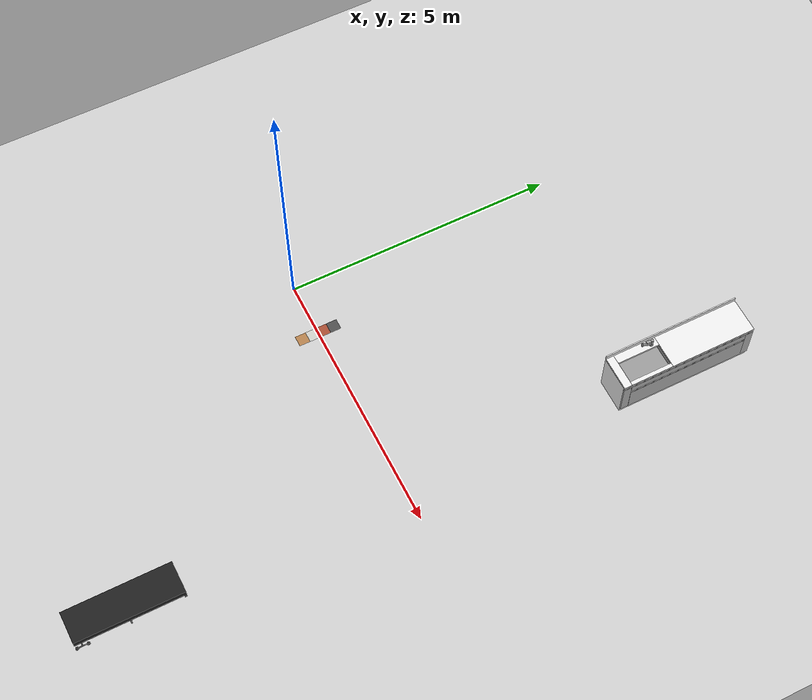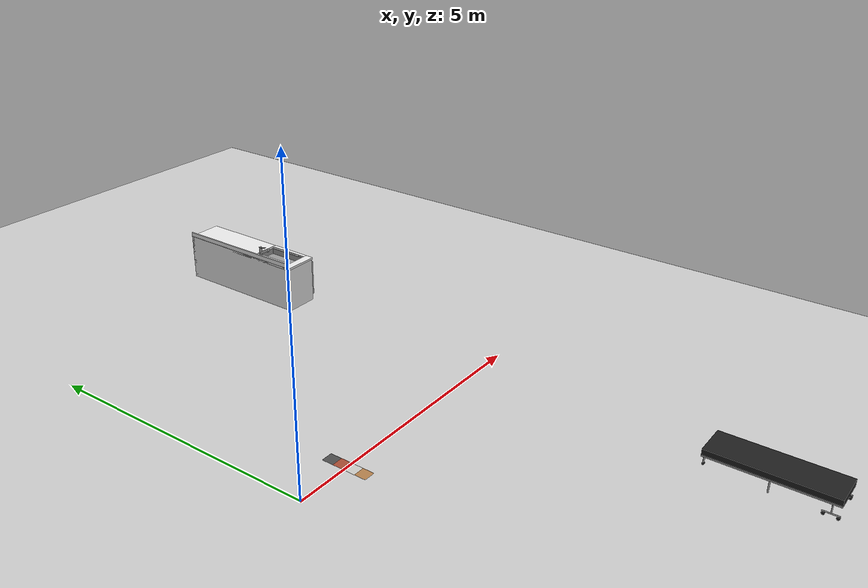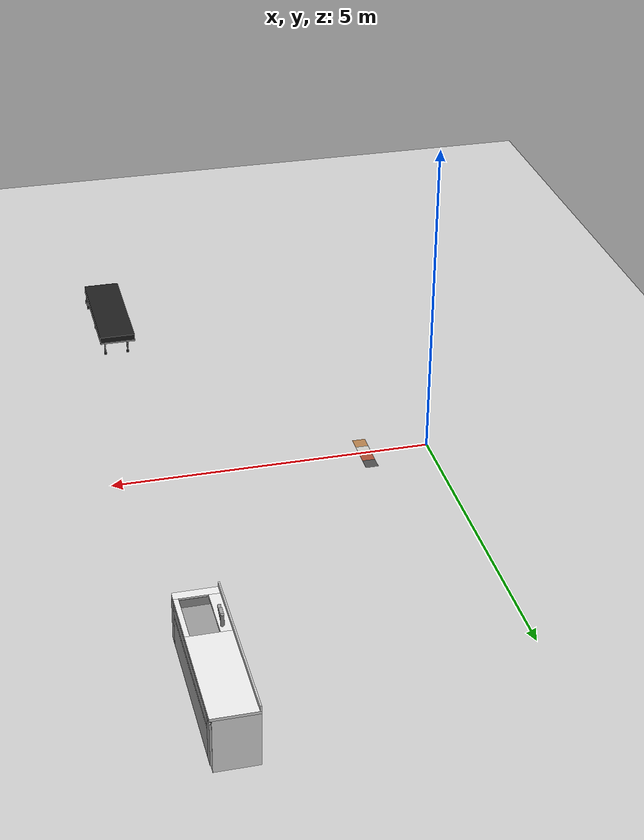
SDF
<sdf version="1.6">
 <world name="megaweb">
  <model name="ground_plane">
   <static>1</static>
   <link name="link">
    <collision name="collision">
     <geometry><plane><normal>0 0 1</normal><size>100 100</size></plane></geometry>
     <surface><friction><ode><mu>100</mu><mu2>50</mu2></ode></friction></surface>
    </collision>
    <visual name="visual">
     <cast_shadows>0</cast_shadows>
     <geometry><plane><normal>0 0 1</normal><size>100 100</size></plane></geometry>
     <material>
      <script><uri>file://media/materials/scripts/gazebo.material</uri><name>Gazebo/Grey</name></script>
     </material>
    </visual>
   </link>
  </model>
  <model name="class0tag">
   <link name="link">
    <inertial>
     <mass>1</mass>
     <inertia>
      <ixx>0.166667</ixx>
      <ixy>0</ixy>
      <ixz>0</ixz>
      <iyy>0.166667</iyy>
      <iyz>0</iyz>
      <izz>0.166667</izz>
     </inertia>
    </inertial>
    <visual name="visual">
     <geometry><box><size>0.2 0.2 0.0001</size></box></geometry>
     <material>
      <script><name>Gazebo/Wood</name><uri>file://media/materials/scripts/gazebo.material</uri></script>
      <ambient>0.3 0.3 0.3 1</ambient>
      <diffuse>0.7 0.7 0.7 1</diffuse>
      <specular>0.01 0.01 0.01 1</specular>
      <emissive>0 0 0 1</emissive>
      <shader type="vertex"><normal_map>__default__</normal_map></shader>
      <lighting>0</lighting>
     </material>
    </visual>
   </link>
   <static>0</static>
   <pose>1 -0.3 0 0 -0 0</pose>
  </model>
  <model name="class1tag">
   <link name="link">
    <inertial>
     <mass>1</mass>
     <inertia>
      <ixx>0.166667</ixx>
      <ixy>0</ixy>
      <ixz>0</ixz>
      <iyy>0.166667</iyy>
      <iyz>0</iyz>
      <izz>0.166667</izz>
     </inertia>
    </inertial>
    <visual name="visual">
     <geometry><box><size>0.2 0.2 0.0001</size></box></geometry>
     <material>
      <script><name>Gazebo/CeilingTiled</name><uri>file://media/materials/scripts/gazebo.material</uri></script>
      <ambient>0.3 0.3 0.3 1</ambient>
      <diffuse>0.7 0.7 0.7 1</diffuse>
      <specular>0.01 0.01 0.01 1</specular>
      <emissive>0 0 0 1</emissive>
      <shader type="vertex"><normal_map>__default__</normal_map></shader>
      <lighting>0</lighting>
     </material>
    </visual>
   </link>
   <static>0</static>
   <pose>1 -0.1 0 0 -0 0</pose>
  </model>
  <model name="class2tag">
   <link name="link">
    <inertial>
     <mass>1</mass>
     <inertia>
      <ixx>0.166667</ixx>
      <ixy>0</ixy>
      <ixz>0</ixz>
      <iyy>0.166667</iyy>
      <iyz>0</iyz>
      <izz>0.166667</izz>
     </inertia>
    </inertial>
    <visual name="visual">
     <geometry><box><size>0.2 0.2 0.0001</size></box></geometry>
     <material>
      <script><name>Gazebo/Bricks</name><uri>file://media/materials/scripts/gazebo.material</uri></script>
      <ambient>0.3 0.3 0.3 1</ambient>
      <diffuse>0.7 0.7 0.7 1</diffuse>
      <specular>0.01 0.01 0.01 1</specular>
      <emissive>0 0 0 1</emissive>
      <shader type="vertex"><normal_map>__default__</normal_map></shader>
      <lighting>0</lighting>
     </material>
    </visual>
   </link>
   <static>0</static>
   <pose>1 0.1 0 0 -0 0</pose>
  </model>
  <model name="class3tag">
   <link name="link">
    <inertial>
     <mass>1</mass>
     <inertia>
      <ixx>0.166667</ixx>
      <ixy>0</ixy>
      <ixz>0</ixz>
      <iyy>0.166667</iyy>
      <iyz>0</iyz>
      <izz>0.166667</izz>
     </inertia>
    </inertial>
    <visual name="visual">
     <geometry><box><size>0.2 0.2 0.0001</size></box></geometry>
     <material>
      <script><name>Gazebo/Road</name><uri>file://media/materials/scripts/gazebo.material</uri></script>
      <ambient>0.3 0.3 0.3 1</ambient>
      <diffuse>0.7 0.7 0.7 1</diffuse>
      <specular>0.01 0.01 0.01 1</specular>
      <emissive>0 0 0 1</emissive>
      <shader type="vertex"><normal_map>__default__</normal_map></shader>
      <lighting>0</lighting>
     </material>
    </visual>
   </link>
   <static>0</static>
   <pose>1 0.3 0 0 -0 0</pose>
  </model>
  <model name="bed">
   <link name="link">
    <inertial>
     <mass>10</mass>
     <inertia><ixx>1</ixx><ixy>0</ixy><ixz>0</ixz><iyy>1</iyy><iyz>0</iyz><izz>1</izz></inertia>
    </inertial>
    <visual name="cushion">
     <pose>-0.295 -0.975 0.2875 0 -0 0</pose>
     <geometry><box><size>0.59 1.95 0.095</size></box></geometry>
     <material>
      <script>
       <uri>model://base_materials/cloth/scripts</uri>
       <uri>model://base_materials/cloth/textures</uri>
       <name>cloth/black</name>
      </script>
     </material>
    </visual>
    <collision name="collision_cushion">
     <pose>-0.295 -0.975 0.2875 0 -0 0</pose>
     <geometry><box><size>0.59 1.95 0.095</size></box></geometry>
    </collision>
    <visual name="top_frame">
     <pose>-0.295 -0.975 0.225 0 -0 0</pose>
     <geometry><box><size>0.59 1.95 0.03</size></box></geometry>
     <material>
      <script><uri>model://base_materials/color/scripts</uri><name>hsr_color/grey</name></script>
     </material>
    </visual>
    <collision name="collision_top_frame">
     <pose>-0.295 -0.975 0.225 0 -0 0</pose>
     <geometry><box><size>0.59 1.95 0.03</size></box></geometry>
    </collision>
    <visual name="right_front_pole">
     <pose>-0.075 -0.0125 0.125 0 -0 0</pose>
     <geometry><cylinder><radius>0.0125</radius><length>0.17</length></cylinder></geometry>
     <material>
      <script><uri>model://base_materials/color/scripts</uri><name>hsr_color/grey</name></script>
     </material>
    </visual>
    <collision name="collision_right_front_pole">
     <pose>-0.075 -0.0125 0.125 0 -0 0</pose>
     <geometry><cylinder><radius>0.0125</radius><length>0.17</length></cylinder></geometry>
    </collision>
    <visual name="right_front_caster">
     <pose>-0.075 -0.0125 0.02 0 1.57 0</pose>
     <geometry><cylinder><radius>0.02</radius><length>0.04</length></cylinder></geometry>
     <material><script><name>Gazebo/Black</name><uri>__default__</uri></script></material>
    </visual>
    <collision name="collision_right_front_caster">
     <pose>-0.075 -0.0125 0.02 0 1.57 0</pose>
     <geometry><cylinder><radius>0.02</radius><length>0.04</length></cylinder></geometry>
    </collision>
    <visual name="right_back_pole">
     <pose>-0.46 -0.0125 0.125 0 -0 0</pose>
     <geometry><cylinder><radius>0.0125</radius><length>0.17</length></cylinder></geometry>
     <material>
      <script><uri>model://base_materials/color/scripts</uri><name>hsr_color/grey</name></script>
     </material>
    </visual>
    <collision name="collision_right_back_pole">
     <pose>-0.46 -0.0125 0.125 0 -0 0</pose>
     <geometry><cylinder><radius>0.0125</radius><length>0.17</length></cylinder></geometry>
    </collision>
    <visual name="right_back_caster">
     <pose>-0.46 -0.0125 0.02 0 1.57 0</pose>
     <geometry><cylinder><radius>0.02</radius><length>0.04</length></cylinder></geometry>
     <material><script><name>Gazebo/Black</name><uri>__default__</uri></script></material>
    </visual>
    <collision name="collision_back_front_caster">
     <pose>-0.46 -0.0125 0.02 0 1.57 0</pose>
     <geometry><cylinder><radius>0.02</radius><length>0.04</length></cylinder></geometry>
    </collision>
    <visual name="center_front_pole">
     <pose>-0.0425 -0.975 0.105 0 -0 0</pose>
     <geometry><cylinder><radius>0.0125</radius><length>0.21</length></cylinder></geometry>
     <material>
      <script><uri>model://base_materials/color/scripts</uri><name>hsr_color/grey</name></script>
     </material>
    </visual>
    <collision name="collision_center_front_pole">
     <pose>-0.0425 -0.975 0.105 0 -0 0</pose>
     <geometry><cylinder><radius>0.0125</radius><length>0.17</length></cylinder></geometry>
    </collision>
    <visual name="center_back_pole">
     <pose>-0.5475 -0.975 0.105 0 -0 0</pose>
     <geometry><cylinder><radius>0.0125</radius><length>0.21</length></cylinder></geometry>
     <material>
      <script><uri>model://base_materials/color/scripts</uri><name>hsr_color/grey</name></script>
     </material>
    </visual>
    <collision name="collision_center_back_pole">
     <pose>-0.5475 -0.975 0.105 0 -0 0</pose>
     <geometry><cylinder><radius>0.0125</radius><length>0.17</length></cylinder></geometry>
    </collision>
    <visual name="left_front_horizon_pole">
     <pose>-0.01 -1.825 0.06 1.57 -0 0</pose>
     <geometry><cylinder><radius>0.01</radius><length>0.25</length></cylinder></geometry>
     <material>
      <script><uri>model://base_materials/color/scripts</uri><name>hsr_color/grey</name></script>
     </material>
    </visual>
    <collision name="collision_left_front_horizon_pole">
     <pose>-0.01 -1.825 0.06 1.57 -0 0</pose>
     <geometry><cylinder><radius>0.01</radius><length>0.25</length></cylinder></geometry>
    </collision>
    <visual name="left_front_vertical_pole">
     <pose>-0.01 -1.825 0.14 0 -0 0</pose>
     <geometry><cylinder><radius>0.01</radius><length>0.14</length></cylinder></geometry>
     <material>
      <script><uri>model://base_materials/color/scripts</uri><name>hsr_color/grey</name></script>
     </material>
    </visual>
    <collision name="collision_left_front_vertical_pole">
     <pose>-0.01 -1.825 0.14 0 -0 0</pose>
     <geometry><cylinder><radius>0.01</radius><length>0.14</length></cylinder></geometry>
    </collision>
    <visual name="left_front_caster_r">
     <pose>-0.02 -1.725 0.025 0 1.57 0</pose>
     <geometry><cylinder><radius>0.025</radius><length>0.04</length></cylinder></geometry>
     <material><script><name>Gazebo/Black</name><uri>__default__</uri></script></material>
    </visual>
    <collision name="collision_left_front_caster_r">
     <pose>-0.02 -1.725 0.025 0 1.57 0</pose>
     <geometry><cylinder><radius>0.025</radius><length>0.04</length></cylinder></geometry>
    </collision>
    <visual name="left_front_caster_l">
     <pose>-0.02 -1.925 0.025 0 1.57 0</pose>
     <geometry><cylinder><radius>0.025</radius><length>0.04</length></cylinder></geometry>
     <material><script><name>Gazebo/Black</name><uri>__default__</uri></script></material>
    </visual>
    <collision name="collision_left_front_caster_l">
     <pose>-0.02 -1.925 0.025 0 1.57 0</pose>
     <geometry><cylinder><radius>0.025</radius><length>0.04</length></cylinder></geometry>
    </collision>
    <visual name="left_back_horizon_pole">
     <pose>-0.58 -1.825 0.06 1.57 -0 0</pose>
     <geometry><cylinder><radius>0.01</radius><length>0.25</length></cylinder></geometry>
     <material>
      <script><uri>model://base_materials/color/scripts</uri><name>hsr_color/grey</name></script>
     </material>
    </visual>
    <collision name="collision_left_back_horizon_pole">
     <pose>-0.58 -1.825 0.06 1.57 -0 0</pose>
     <geometry><cylinder><radius>0.01</radius><length>0.25</length></cylinder></geometry>
    </collision>
    <visual name="left_back_vertical_pole">
     <pose>-0.58 -1.825 0.14 0 -0 0</pose>
     <geometry><cylinder><radius>0.01</radius><length>0.14</length></cylinder></geometry>
     <material>
      <script><uri>model://base_materials/color/scripts</uri><name>hsr_color/grey</name></script>
     </material>
    </visual>
    <collision name="collision_left_back_vertical_pole">
     <pose>-0.58 -1.825 0.14 0 -0 0</pose>
     <geometry><cylinder><radius>0.01</radius><length>0.14</length></cylinder></geometry>
    </collision>
    <visual name="left_back_caster_r">
     <pose>-0.57 -1.725 0.025 0 1.57 0</pose>
     <geometry><cylinder><radius>0.025</radius><length>0.04</length></cylinder></geometry>
     <material><script><name>Gazebo/Black</name><uri>__default__</uri></script></material>
    </visual>
    <collision name="collision_left_back_caster_r">
     <pose>-0.57 -1.725 0.025 0 1.57 0</pose>
     <geometry><cylinder><radius>0.025</radius><length>0.04</length></cylinder></geometry>
    </collision>
    <visual name="left_back_caster_l">
     <pose>-0.57 -1.925 0.025 0 1.57 0</pose>
     <geometry><cylinder><radius>0.025</radius><length>0.04</length></cylinder></geometry>
     <material><script><name>Gazebo/Black</name><uri>__default__</uri></script></material>
    </visual>
    <collision name="collision_left_back_caster_l">
     <pose>-0.57 -1.925 0.025 0 1.57 0</pose>
     <geometry><cylinder><radius>0.025</radius><length>0.04</length></cylinder></geometry>
    </collision>
    <velocity_decay><linear>0</linear><angular>0</angular></velocity_decay>
   </link>
   <static>1</static>
   <pose>4.56778 -4.01553 0 0 -0 0</pose>
  </model>
  <model name="sink-fix">
   <link name="link">
    <inertial>
     <mass>10</mass>
     <inertia><ixx>1</ixx><ixy>0</ixy><ixz>0</ixz><iyy>1</iyy><iyz>0</iyz><izz>1</izz></inertia>
    </inertial>
    <visual name="faucet1">
     <pose>-0.52 0.82 0.94 0 -0 0</pose>
     <geometry><cylinder><radius>0.027</radius><length>0.18</length></cylinder></geometry>
     <material>
      <script><uri>model://base_materials/color/scripts</uri><name>hsr_color/grey</name></script>
     </material>
    </visual>
    <collision name="collision_faucet1">
     <pose>-0.52 0.82 0.94 0 -0 0</pose>
     <geometry><cylinder><radius>0.027</radius><length>0.18</length></cylinder></geometry>
    </collision>
    <visual name="faucet2">
     <pose>-0.52 0.72 0.97 1.047 -0 0</pose>
     <geometry><cylinder><radius>0.024</radius><length>0.24</length></cylinder></geometry>
     <material>
      <script><uri>model://base_materials/color/scripts</uri><name>hsr_color/grey</name></script>
     </material>
    </visual>
    <collision name="collision_faucet2">
     <pose>-0.52 0.72 0.97 1.047 -0 0</pose>
     <geometry><cylinder><radius>0.024</radius><length>0.24</length></cylinder></geometry>
    </collision>
    <visual name="faucet3">
     <pose>-0.52 0.63 1 0 -0 0</pose>
     <geometry><cylinder><radius>0.015</radius><length>0.04</length></cylinder></geometry>
     <material>
      <script><uri>model://base_materials/color/scripts</uri><name>hsr_color/grey</name></script>
     </material>
    </visual>
    <collision name="collision_faucet3">
     <pose>-0.52 0.63 1 0 -0 0</pose>
     <geometry><cylinder><radius>0.015</radius><length>0.04</length></cylinder></geometry>
    </collision>
    <visual name="faucet_handle">
     <pose>-0.52 0.75 1.03 1.309 -0 0</pose>
     <geometry><box><size>0.048 0.01 0.11</size></box></geometry>
     <material>
      <script><uri>model://base_materials/color/scripts</uri><name>hsr_color/grey</name></script>
     </material>
    </visual>
    <collision name="collision_faucet_handle">
     <pose>-0.52 0.75 1.03 1.309 -0 0</pose>
     <geometry><box><size>0.048 0.01 0.11</size></box></geometry>
    </collision>
    <visual name="back_bucket">
     <pose>-0.57 0.545 0.74 0 -0 0</pose>
     <geometry><box><size>0.02 0.8 0.18</size></box></geometry>
     <material>
      <script><uri>model://base_materials/color/scripts</uri><name>hsr_color/grey</name></script>
     </material>
    </visual>
    <collision name="collision_back_bucket">
     <pose>-0.57 0.545 0.74 0 -0 0</pose>
     <geometry><box><size>0.02 0.8 0.18</size></box></geometry>
    </collision>
    <visual name="front_bucket">
     <pose>-0.06 0.545 0.74 0 -0 0</pose>
     <geometry><box><size>0.02 0.8 0.18</size></box></geometry>
     <material>
      <script><uri>model://base_materials/color/scripts</uri><name>hsr_color/grey</name></script>
     </material>
    </visual>
    <collision name="collision_fromt_bucket">
     <pose>-0.06 0.545 0.74 0 -0 0</pose>
     <geometry><box><size>0.02 0.8 0.18</size></box></geometry>
    </collision>
    <visual name="left_bucket">
     <pose>-0.32 0.14 0.74 0 -0 0</pose>
     <geometry><box><size>0.5 0.02 0.18</size></box></geometry>
     <material>
      <script><uri>model://base_materials/color/scripts</uri><name>hsr_color/grey</name></script>
     </material>
    </visual>
    <collision name="collision_left_bucket">
     <pose>-0.32 0.14 0.74 0 -0 0</pose>
     <geometry><box><size>0.5 0.02 0.18</size></box></geometry>
    </collision>
    <visual name="right_bucket">
     <pose>-0.32 0.96 0.74 0 -0 0</pose>
     <geometry><box><size>0.5 0.02 0.18</size></box></geometry>
     <material>
      <script><uri>model://base_materials/color/scripts</uri><name>hsr_color/grey</name></script>
     </material>
    </visual>
    <collision name="collision_right_bucket">
     <pose>-0.32 0.96 0.74 0 -0 0</pose>
     <geometry><box><size>0.5 0.02 0.18</size></box></geometry>
    </collision>
    <visual name="bottom_bucket">
     <pose>-0.33 0.555 0.695 0 -0 0</pose>
     <geometry><box><size>0.52 0.82 0.02</size></box></geometry>
     <material>
      <script><uri>model://base_materials/color/scripts</uri><name>hsr_color/grey</name></script>
     </material>
    </visual>
    <collision name="collision_bottom_bucket">
     <pose>-0.33 0.555 0.695 0 -0 0</pose>
     <geometry><box><size>0.52 0.82 0.02</size></box></geometry>
    </collision>
    <visual name="front_board">
     <pose>-0.04 1.275 0.425 0 -0 0</pose>
     <geometry><box><size>0.02 2.549 0.85</size></box></geometry>
     <material>
      <script><uri>model://base_materials/color/scripts</uri><name>hsr_color/white</name></script>
     </material>
    </visual>
    <collision name="collision_front_board">
     <pose>-0.04 1.275 0.425 0 -0 0</pose>
     <geometry><box><size>0.02 2.549 0.85</size></box></geometry>
    </collision>
    <visual name="back_board1">
     <pose>-0.625 1.275 0.425 0 -0 0</pose>
     <geometry><box><size>0.05 2.549 0.85</size></box></geometry>
     <material>
      <script><uri>model://base_materials/color/scripts</uri><name>hsr_color/white</name></script>
     </material>
    </visual>
    <collision name="collision_back_board1">
     <pose>-0.625 1.275 0.425 0 -0 0</pose>
     <geometry><box><size>0.05 2.549 0.85</size></box></geometry>
    </collision>
    <visual name="left_board">
     <pose>-0.34 0.025 0.425 0 -0 0</pose>
     <geometry><box><size>0.62 0.05 0.85</size></box></geometry>
     <material>
      <script><uri>model://base_materials/color/scripts</uri><name>hsr_color/white</name></script>
     </material>
    </visual>
    <collision name="collision_left_board">
     <pose>-0.34 0.025 0.425 0 -0 0</pose>
     <geometry><box><size>0.62 0.05 0.85</size></box></geometry>
    </collision>
    <visual name="right_board">
     <pose>-0.34 2.525 0.425 0 -0 0</pose>
     <geometry><box><size>0.62 0.05 0.85</size></box></geometry>
     <material>
      <script><uri>model://base_materials/color/scripts</uri><name>hsr_color/white</name></script>
     </material>
    </visual>
    <collision name="collision_right_board">
     <pose>-0.34 2.525 0.425 0 -0 0</pose>
     <geometry><box><size>0.62 0.05 0.85</size></box></geometry>
    </collision>
    <visual name="top_left_board">
     <pose>-0.325 0.0725 0.835 0 -0 0</pose>
     <geometry><box><size>0.65 0.146 0.04</size></box></geometry>
     <material>
      <script><uri>model://base_materials/color/scripts</uri><name>hsr_color/white</name></script>
     </material>
    </visual>
    <collision name="collision_top_left_board">
     <pose>-0.325 0.0725 0.835 0 -0 0</pose>
     <geometry><box><size>0.65 0.146 0.04</size></box></geometry>
    </collision>
    <visual name="top_right_board">
     <pose>-0.325 1.7475 0.835 0 -0 0</pose>
     <geometry><box><size>0.65 1.606 0.04</size></box></geometry>
     <material>
      <script><uri>model://base_materials/color/scripts</uri><name>hsr_color/white</name></script>
     </material>
    </visual>
    <collision name="collision_top_right_board">
     <pose>-0.325 1.7475 0.835 0 -0 0</pose>
     <geometry><box><size>0.65 1.606 0.04</size></box></geometry>
    </collision>
    <visual name="top_front_board">
     <pose>-0.035 0.545 0.835 0 -0 0</pose>
     <geometry><box><size>0.07 0.8 0.04</size></box></geometry>
     <material>
      <script><uri>model://base_materials/color/scripts</uri><name>hsr_color/white</name></script>
     </material>
    </visual>
    <collision name="collision_top_front_board">
     <pose>-0.035 0.545 0.835 0 -0 0</pose>
     <geometry><box><size>0.07 0.8 0.04</size></box></geometry>
    </collision>
    <visual name="top_back_board">
     <pose>-0.56 0.545 0.835 0 -0 0</pose>
     <geometry><box><size>0.18 0.8 0.04</size></box></geometry>
     <material>
      <script><uri>model://base_materials/color/scripts</uri><name>hsr_color/white</name></script>
     </material>
    </visual>
    <collision name="collision_top_back_board">
     <pose>-0.56 0.545 0.835 0 -0 0</pose>
     <geometry><box><size>0.18 0.8 0.04</size></box></geometry>
    </collision>
    <visual name="back_board2">
     <pose>-0.64 1.275 0.895 0 -0 0</pose>
     <geometry><box><size>0.02 2.55 0.08</size></box></geometry>
     <material>
      <script><uri>model://base_materials/color/scripts</uri><name>hsr_color/white</name></script>
     </material>
    </visual>
    <collision name="collision_back_board2">
     <pose>-0.64 1.275 0.895 0 -0 0</pose>
     <geometry><box><size>0.02 2.55 0.08</size></box></geometry>
    </collision>
    <visual name="handle1_1">
     <pose>-0.015 1.275 0.81 0 -0 0</pose>
     <geometry><box><size>0.03 2.55 0.005</size></box></geometry>
     <material>
      <script><uri>model://base_materials/color/scripts</uri><name>hsr_color/grey</name></script>
     </material>
    </visual>
    <collision name="collision_handle1_1">
     <pose>-0.015 1.275 0.81 0 -0 0</pose>
     <geometry><box><size>0.03 2.55 0.005</size></box></geometry>
    </collision>
    <visual name="handle1_2">
     <pose>-0.029 1.275 0.7925 0 -0 0</pose>
     <geometry><box><size>0.005 2.55 0.04</size></box></geometry>
     <material>
      <script><uri>model://base_materials/color/scripts</uri><name>hsr_color/grey</name></script>
     </material>
    </visual>
    <collision name="collision_handle1_2">
     <pose>-0.029 1.275 0.7925 0 -0 0</pose>
     <geometry><box><size>0.005 2.55 0.04</size></box></geometry>
    </collision>
    <visual name="handle1_3">
     <pose>-0.015 1.275 0.77 0 -0 0</pose>
     <geometry><box><size>0.03 2.55 0.005</size></box></geometry>
     <material>
      <script><uri>model://base_materials/color/scripts</uri><name>hsr_color/grey</name></script>
     </material>
    </visual>
    <collision name="collision_handle1_3">
     <pose>-0.015 1.275 0.77 0 -0 0</pose>
     <geometry><box><size>0.03 2.55 0.005</size></box></geometry>
    </collision>
    <visual name="front_left_drawer">
     <pose>-0.015 0.0725 0.44 0 -0 0</pose>
     <geometry><box><size>0.03 0.145 0.66</size></box></geometry>
     <material>
      <script><uri>model://sink-fix/scripts</uri><uri>model://sink-fix/textures</uri><name>sink/001</name></script>
     </material>
    </visual>
    <collision name="collision_left_drawer">
     <pose>-0.015 0.0725 0.44 0 -0 0</pose>
     <geometry><box><size>0.03 0.145 0.66</size></box></geometry>
    </collision>
    <visual name="front_right_drawer">
     <pose>-0.015 2.4725 0.44 0 -0 0</pose>
     <geometry><box><size>0.03 0.145 0.66</size></box></geometry>
     <material>
      <script><uri>model://sink-fix/scripts</uri><uri>model://sink-fix/textures</uri><name>sink/001</name></script>
     </material>
    </visual>
    <collision name="collision_right_drawer">
     <pose>-0.015 2.4725 0.44 0 -0 0</pose>
     <geometry><box><size>0.03 0.145 0.66</size></box></geometry>
    </collision>
    <visual name="front_top_drawer">
     <pose>-0.015 1.275 0.6975 0 -0 0</pose>
     <geometry><box><size>0.03 2.25 0.145</size></box></geometry>
     <material>
      <script><uri>model://sink-fix/scripts</uri><uri>model://sink-fix/textures</uri><name>sink/001</name></script>
     </material>
    </visual>
    <collision name="collision_top_drawer">
     <pose>-0.015 1.275 0.6975 0 -0 0</pose>
     <geometry><box><size>0.03 2.25 0.145</size></box></geometry>
    </collision>
    <visual name="handle2_1">
     <pose>-0.015 1.275 0.62 0 -0 0</pose>
     <geometry><box><size>0.03 2.25 0.005</size></box></geometry>
     <material>
      <script><uri>model://base_materials/color/scripts</uri><name>hsr_color/grey</name></script>
     </material>
    </visual>
    <collision name="collision_handle2_1">
     <pose>-0.015 1.275 0.62 0 -0 0</pose>
     <geometry><box><size>0.03 2.25 0.005</size></box></geometry>
    </collision>
    <visual name="handle2_2">
     <pose>-0.029 1.275 0.6025 0 -0 0</pose>
     <geometry><box><size>0.005 2.25 0.04</size></box></geometry>
     <material>
      <script><uri>model://base_materials/color/scripts</uri><name>hsr_color/grey</name></script>
     </material>
    </visual>
    <collision name="collision_handle2_2">
     <pose>-0.029 1.275 0.6025 0 -0 0</pose>
     <geometry><box><size>0.005 2.25 0.04</size></box></geometry>
    </collision>
    <visual name="handle2_3">
     <pose>-0.015 1.275 0.58 0 -0 0</pose>
     <geometry><box><size>0.03 2.25 0.005</size></box></geometry>
     <material>
      <script><uri>model://base_materials/color/scripts</uri><name>hsr_color/grey</name></script>
     </material>
    </visual>
    <collision name="collision_handle2_3">
     <pose>-0.015 1.275 0.58 0 -0 0</pose>
     <geometry><box><size>0.03 2.25 0.005</size></box></geometry>
    </collision>
    <visual name="front_bottom_drawer">
     <pose>-0.015 1.275 0.345 0 -0 0</pose>
     <geometry><box><size>0.03 2.25 0.47</size></box></geometry>
     <material>
      <script><uri>model://sink-fix/scripts</uri><uri>model://sink-fix/textures</uri><name>sink/001</name></script>
     </material>
    </visual>
    <collision name="collision_bottom_drawer">
     <pose>-0.015 1.275 0.345 0 -0 0</pose>
     <geometry><box><size>0.03 2.25 0.47</size></box></geometry>
    </collision>
    <velocity_decay><linear>0</linear><angular>0</angular></velocity_decay>
   </link>
   <static>1</static>
   <pose>4.76183 3.95761 0 0 -0 0</pose>
  </model>
 </world>
</sdf>
